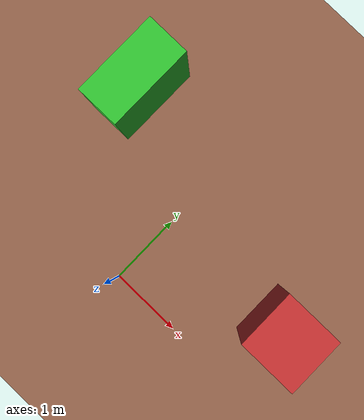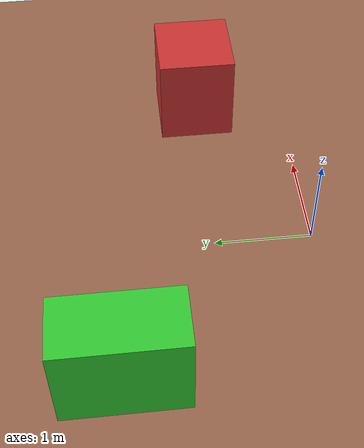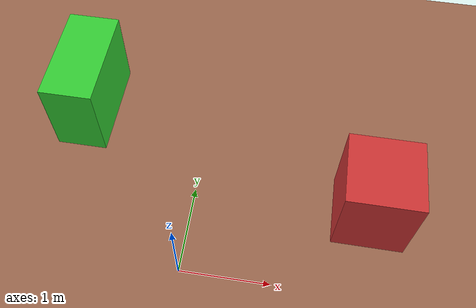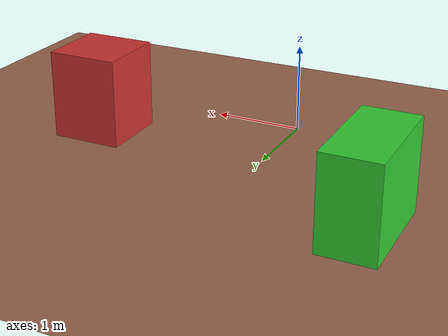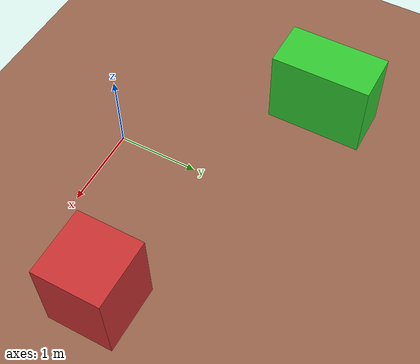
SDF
<?xml version="1.0" ?>
<sdf version="1.10">
  <world name="arena">

    <!-- Mandatory Plugins: Without these, physics won't simulate and objects won't render -->
    <plugin filename="gz-sim-physics-system" name="gz::sim::systems::Physics" />
    <plugin filename="gz-sim-user-commands-system" name="gz::sim::systems::UserCommands" />
    <plugin filename="gz-sim-scene-broadcaster-system" name="gz::sim::systems::SceneBroadcaster" />

    <!-- Lighting -->
    <light type="directional" name="sun">
      <cast_shadows>true</cast_shadows>
      <pose>0 0 10 0 0 0</pose>
      <diffuse>0.8 0.8 0.8 1</diffuse>
      <direction>-0.5 0.1 -0.9</direction>
    </light>

    <!-- Ground Plane -->
    <model name="ground_plane">
      <static>true</static>
      <link name="link">
        <collision name="collision">
          <geometry><plane><normal>0 0 1</normal><size>100 100</size></plane></geometry>
        </collision>
        <visual name="visual">
          <geometry><plane><normal>0 0 1</normal><size>100 100</size></plane></geometry>
          <material>
            <ambient>0.6 0.4 0.3 1</ambient>
            <diffuse>0.6 0.4 0.3 1</diffuse>
          </material>
        </visual>
      </link>
    </model>

    <!-- Obstacle 1 -->
    <model name="obstacle_1">
      <static>true</static>
      <pose>2.0 1.0 0.5 0 0 0</pose>
      <link name="link">
        <collision name="collision">
          <geometry><box><size>0.8 0.8 1.0</size></box></geometry>
        </collision>
        <visual name="visual">
          <geometry><box><size>0.8 0.8 1.0</size></box></geometry>
          <material>
            <ambient>0.8 0.2 0.2 1</ambient>
            <diffuse>0.8 0.2 0.2 1</diffuse>
          </material>
        </visual>
      </link>
    </model>

    <!-- Obstacle 2 -->
    <model name="obstacle_2">
      <static>true</static>
      <pose>-1.5 2.0 0.5 0 0 0</pose>
      <link name="link">
        <collision name="collision">
          <geometry><box><size>0.6 1.2 1.0</size></box></geometry>
        </collision>
        <visual name="visual">
          <geometry><box><size>0.6 1.2 1.0</size></box></geometry>
          <material>
            <ambient>0.2 0.8 0.2 1</ambient>
            <diffuse>0.2 0.8 0.2 1</diffuse>
          </material>
        </visual>
      </link>
    </model>

  </world>
</sdf>
